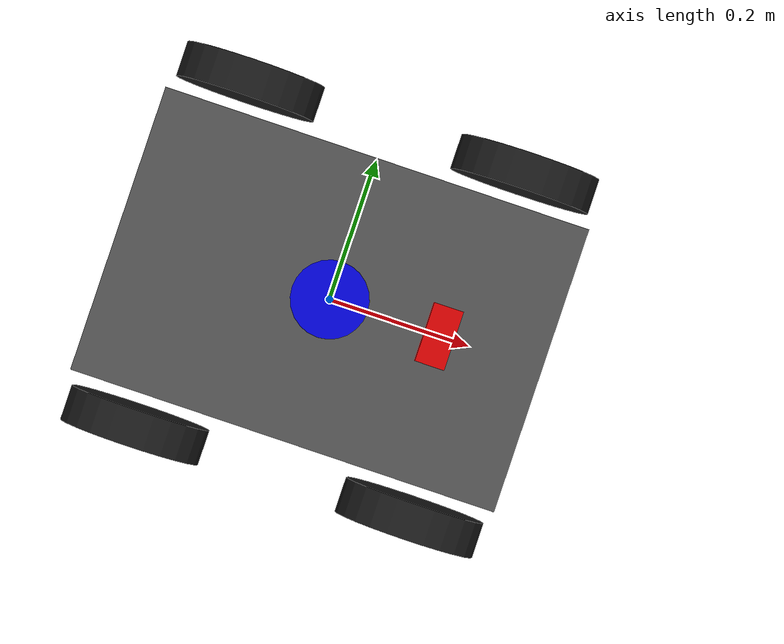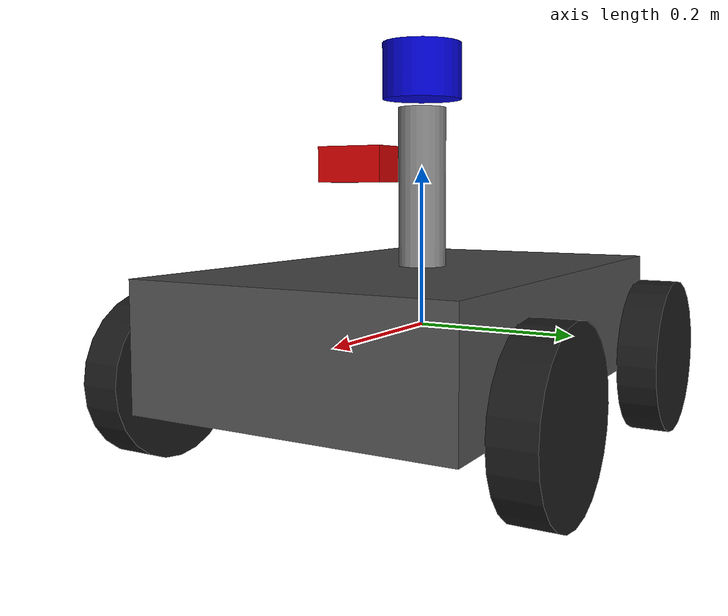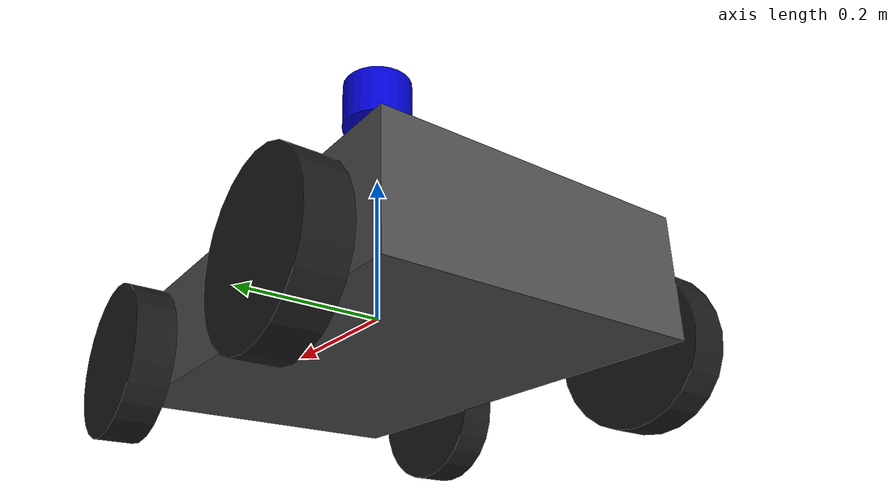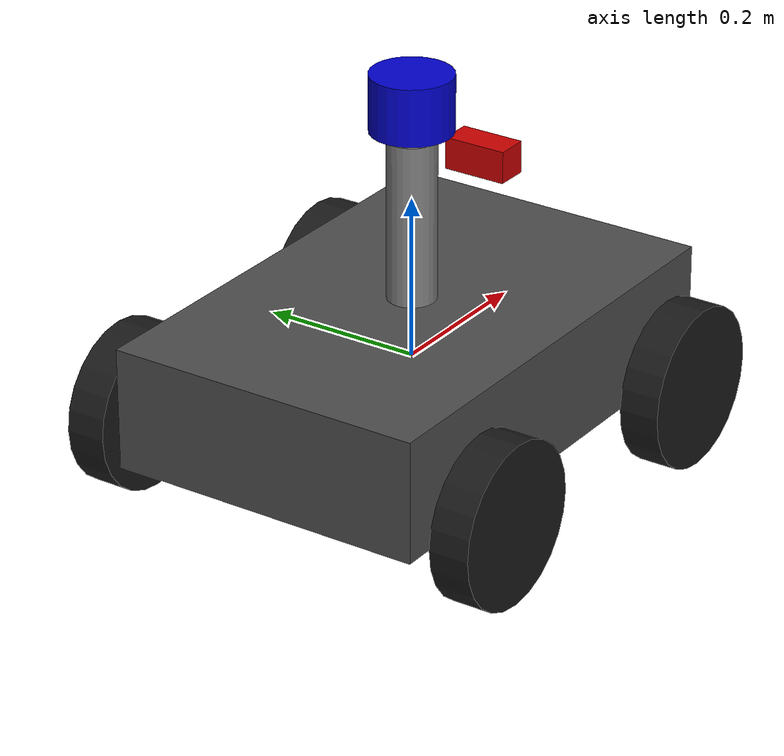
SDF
<?xml version="1.0" ?>
<sdf version="1.6">
  <model name="livo2_rover">
    <static>false</static>

    <!-- ==================== CHASSIS ==================== -->
    <link name="base_link">
      <inertial>
        <mass>10.0</mass>
        <inertia>
          <ixx>0.5</ixx><ixy>0</ixy><ixz>0</ixz>
          <iyy>1.0</iyy><iyz>0</iyz>
          <izz>0.5</izz>
        </inertia>
      </inertial>
      <collision name="chassis_collision">
        <geometry>
          <box><size>0.6 0.4 0.15</size></box>
        </geometry>
      </collision>
      <visual name="chassis_visual">
        <geometry>
          <box><size>0.6 0.4 0.15</size></box>
        </geometry>
        <material>
          <ambient>0.2 0.2 0.2 1</ambient>
          <diffuse>0.3 0.3 0.3 1</diffuse>
        </material>
      </visual>

      <!-- ==================== IMU SENSOR ==================== -->
      <sensor name="imu_sensor" type="imu">
        <always_on>true</always_on>
        <update_rate>200</update_rate>
        <imu>
          <angular_velocity>
            <x><noise type="gaussian"><mean>0.0</mean><stddev>0.003</stddev></noise></x>
            <y><noise type="gaussian"><mean>0.0</mean><stddev>0.003</stddev></noise></y>
            <z><noise type="gaussian"><mean>0.0</mean><stddev>0.003</stddev></noise></z>
          </angular_velocity>
          <linear_acceleration>
            <x><noise type="gaussian"><mean>0.0</mean><stddev>0.05</stddev></noise></x>
            <y><noise type="gaussian"><mean>0.0</mean><stddev>0.05</stddev></noise></y>
            <z><noise type="gaussian"><mean>0.0</mean><stddev>0.05</stddev></noise></z>
          </linear_acceleration>
        </imu>
        <plugin name="imu_plugin" filename="libgazebo_ros_imu_sensor.so">
          <topicName>/rover/imu</topicName>
          <bodyName>base_link</bodyName>
          <frameName>base_link</frameName>
          <updateRateHZ>200.0</updateRateHZ>
          <gaussianNoise>0.0</gaussianNoise>
          <xyzOffset>0 0 0</xyzOffset>
          <rpyOffset>0 0 0</rpyOffset>
        </plugin>
      </sensor>
    </link>

    <!-- ==================== WHEELS ==================== -->
    <!-- Front left wheel -->
    <link name="front_left_wheel">
      <pose>0.2 0.25 -0.05 -1.5708 0 0</pose>
      <inertial>
        <mass>0.5</mass>
        <inertia>
          <ixx>0.001</ixx><ixy>0</ixy><ixz>0</ixz>
          <iyy>0.001</iyy><iyz>0</iyz><izz>0.001</izz>
        </inertia>
      </inertial>
      <collision name="collision">
        <geometry><cylinder><radius>0.1</radius><length>0.05</length></cylinder></geometry>
        <surface>
          <friction><ode><mu>1.0</mu><mu2>1.0</mu2></ode></friction>
        </surface>
      </collision>
      <visual name="visual">
        <geometry><cylinder><radius>0.1</radius><length>0.05</length></cylinder></geometry>
        <material><ambient>0.1 0.1 0.1 1</ambient></material>
      </visual>
    </link>
    <joint name="front_left_wheel_joint" type="revolute">
      <parent>base_link</parent>
      <child>front_left_wheel</child>
      <axis><xyz>0 0 1</xyz></axis>
    </joint>

    <!-- Front right wheel -->
    <link name="front_right_wheel">
      <pose>0.2 -0.25 -0.05 -1.5708 0 0</pose>
      <inertial>
        <mass>0.5</mass>
        <inertia>
          <ixx>0.001</ixx><ixy>0</ixy><ixz>0</ixz>
          <iyy>0.001</iyy><iyz>0</iyz><izz>0.001</izz>
        </inertia>
      </inertial>
      <collision name="collision">
        <geometry><cylinder><radius>0.1</radius><length>0.05</length></cylinder></geometry>
        <surface>
          <friction><ode><mu>1.0</mu><mu2>1.0</mu2></ode></friction>
        </surface>
      </collision>
      <visual name="visual">
        <geometry><cylinder><radius>0.1</radius><length>0.05</length></cylinder></geometry>
        <material><ambient>0.1 0.1 0.1 1</ambient></material>
      </visual>
    </link>
    <joint name="front_right_wheel_joint" type="revolute">
      <parent>base_link</parent>
      <child>front_right_wheel</child>
      <axis><xyz>0 0 1</xyz></axis>
    </joint>

    <!-- Rear left wheel -->
    <link name="rear_left_wheel">
      <pose>-0.2 0.25 -0.05 -1.5708 0 0</pose>
      <inertial>
        <mass>0.5</mass>
        <inertia>
          <ixx>0.001</ixx><ixy>0</ixy><ixz>0</ixz>
          <iyy>0.001</iyy><iyz>0</iyz><izz>0.001</izz>
        </inertia>
      </inertial>
      <collision name="collision">
        <geometry><cylinder><radius>0.1</radius><length>0.05</length></cylinder></geometry>
        <surface>
          <friction><ode><mu>1.0</mu><mu2>1.0</mu2></ode></friction>
        </surface>
      </collision>
      <visual name="visual">
        <geometry><cylinder><radius>0.1</radius><length>0.05</length></cylinder></geometry>
        <material><ambient>0.1 0.1 0.1 1</ambient></material>
      </visual>
    </link>
    <joint name="rear_left_wheel_joint" type="revolute">
      <parent>base_link</parent>
      <child>rear_left_wheel</child>
      <axis><xyz>0 0 1</xyz></axis>
    </joint>

    <!-- Rear right wheel -->
    <link name="rear_right_wheel">
      <pose>-0.2 -0.25 -0.05 -1.5708 0 0</pose>
      <inertial>
        <mass>0.5</mass>
        <inertia>
          <ixx>0.001</ixx><ixy>0</ixy><ixz>0</ixz>
          <iyy>0.001</iyy><iyz>0</iyz><izz>0.001</izz>
        </inertia>
      </inertial>
      <collision name="collision">
        <geometry><cylinder><radius>0.1</radius><length>0.05</length></cylinder></geometry>
        <surface>
          <friction><ode><mu>1.0</mu><mu2>1.0</mu2></ode></friction>
        </surface>
      </collision>
      <visual name="visual">
        <geometry><cylinder><radius>0.1</radius><length>0.05</length></cylinder></geometry>
        <material><ambient>0.1 0.1 0.1 1</ambient></material>
      </visual>
    </link>
    <joint name="rear_right_wheel_joint" type="revolute">
      <parent>base_link</parent>
      <child>rear_right_wheel</child>
      <axis><xyz>0 0 1</xyz></axis>
    </joint>

    <!-- Differential drive plugin (ROS1 Noetic syntax) -->
    <plugin name="diff_drive" filename="libgazebo_ros_diff_drive.so">
      <updateRate>100</updateRate>
      <leftJoint>front_left_wheel_joint</leftJoint>
      <rightJoint>front_right_wheel_joint</rightJoint>
      <wheelSeparation>0.5</wheelSeparation>
      <wheelDiameter>0.2</wheelDiameter>
      <wheelTorque>20</wheelTorque>
      <wheelAcceleration>1.0</wheelAcceleration>
      <commandTopic>/rover/cmd_vel</commandTopic>
      <odometryTopic>/rover/odom</odometryTopic>
      <odometryFrame>odom</odometryFrame>
      <robotBaseFrame>base_link</robotBaseFrame>
      <publishOdom>true</publishOdom>
      <publishOdomTF>true</publishOdomTF>
      <publishWheelTF>false</publishWheelTF>
      <publishWheelJointState>false</publishWheelJointState>
      <legacyMode>false</legacyMode>
    </plugin>

    <!-- Second diff drive for rear wheels (slaved to front) -->
    <plugin name="rear_diff_drive" filename="libgazebo_ros_diff_drive.so">
      <updateRate>100</updateRate>
      <leftJoint>rear_left_wheel_joint</leftJoint>
      <rightJoint>rear_right_wheel_joint</rightJoint>
      <wheelSeparation>0.5</wheelSeparation>
      <wheelDiameter>0.2</wheelDiameter>
      <wheelTorque>20</wheelTorque>
      <wheelAcceleration>1.0</wheelAcceleration>
      <commandTopic>/rover/cmd_vel</commandTopic>
      <odometryTopic>/rover/rear_odom</odometryTopic>
      <odometryFrame>odom</odometryFrame>
      <robotBaseFrame>base_link</robotBaseFrame>
      <publishOdom>false</publishOdom>
      <publishOdomTF>false</publishOdomTF>
      <publishWheelTF>false</publishWheelTF>
      <legacyMode>false</legacyMode>
    </plugin>

    <!-- ==================== SENSOR MAST ==================== -->
    <link name="sensor_mast">
      <pose>0 0 0.175 0 0 0</pose>
      <inertial>
        <mass>0.3</mass>
        <inertia>
          <ixx>0.001</ixx><ixy>0</ixy><ixz>0</ixz>
          <iyy>0.001</iyy><iyz>0</iyz><izz>0.001</izz>
        </inertia>
      </inertial>
      <collision name="mast_collision">
        <geometry><cylinder><radius>0.03</radius><length>0.2</length></cylinder></geometry>
      </collision>
      <visual name="mast_visual">
        <geometry><cylinder><radius>0.03</radius><length>0.2</length></cylinder></geometry>
        <material><ambient>0.5 0.5 0.5 1</ambient></material>
      </visual>
    </link>
    <joint name="mast_joint" type="fixed">
      <parent>base_link</parent>
      <child>sensor_mast</child>
    </joint>

    <!-- ==================== VLP-16 LIDAR ==================== -->
    <link name="velodyne_link">
      <pose>0 0 0.32 0 0 0</pose>
      <inertial>
        <mass>0.83</mass>
        <inertia>
          <ixx>0.001</ixx><ixy>0</ixy><ixz>0</ixz>
          <iyy>0.001</iyy><iyz>0</iyz><izz>0.001</izz>
        </inertia>
      </inertial>
      <collision name="lidar_collision">
        <geometry><cylinder><radius>0.05</radius><length>0.07</length></cylinder></geometry>
      </collision>
      <visual name="lidar_visual">
        <geometry><cylinder><radius>0.05</radius><length>0.07</length></cylinder></geometry>
        <material>
          <ambient>0.0 0.0 0.8 1</ambient>
          <diffuse>0.0 0.0 0.8 1</diffuse>
        </material>
      </visual>

      <sensor name="velodyne" type="ray">
        <always_on>true</always_on>
        <visualize>false</visualize>
        <update_rate>10</update_rate>
        <ray>
          <scan>
            <horizontal>
              <samples>900</samples>
              <resolution>1</resolution>
              <min_angle>-3.14159</min_angle>
              <max_angle>3.14159</max_angle>
            </horizontal>
            <vertical>
              <samples>16</samples>
              <resolution>1</resolution>
              <min_angle>-0.261799</min_angle>
              <max_angle>0.261799</max_angle>
            </vertical>
          </scan>
          <range>
            <min>0.5</min>
            <max>100.0</max>
            <resolution>0.003</resolution>
          </range>
          <noise>
            <type>gaussian</type>
            <mean>0.0</mean>
            <stddev>0.005</stddev>
          </noise>
        </ray>
        <plugin name="velodyne_plugin" filename="libgazebo_ros_velodyne_laser.so">
          <topicName>/rover/velodyne_points</topicName>
          <frameName>velodyne_link</frameName>
          <min_range>0.5</min_range>
          <max_range>100.0</max_range>
          <gaussianNoise>0.005</gaussianNoise>
          <organize_cloud>false</organize_cloud>
        </plugin>
      </sensor>
    </link>
    <joint name="velodyne_joint" type="fixed">
      <parent>sensor_mast</parent>
      <child>velodyne_link</child>
    </joint>

    <!-- ==================== CAMERA ==================== -->
    <link name="camera_link">
      <pose>0.15 0 0.2 0 0 0</pose>
      <inertial>
        <mass>0.1</mass>
        <inertia>
          <ixx>0.0001</ixx><ixy>0</ixy><ixz>0</ixz>
          <iyy>0.0001</iyy><iyz>0</iyz><izz>0.0001</izz>
        </inertia>
      </inertial>
      <collision name="camera_collision">
        <geometry><box><size>0.04 0.08 0.04</size></box></geometry>
      </collision>
      <visual name="camera_visual">
        <geometry><box><size>0.04 0.08 0.04</size></box></geometry>
        <material>
          <ambient>0.8 0.0 0.0 1</ambient>
          <diffuse>0.8 0.0 0.0 1</diffuse>
        </material>
      </visual>

      <sensor name="camera" type="camera">
        <always_on>true</always_on>
        <visualize>false</visualize>
        <update_rate>20</update_rate>
        <camera>
          <horizontal_fov>1.3962634</horizontal_fov>
          <image>
            <width>640</width>
            <height>480</height>
            <format>R8G8B8</format>
          </image>
          <clip>
            <near>0.02</near>
            <far>300</far>
          </clip>
          <noise>
            <type>gaussian</type>
            <mean>0.0</mean>
            <stddev>0.007</stddev>
          </noise>
        </camera>
        <plugin name="camera_plugin" filename="libgazebo_ros_camera.so">
          <cameraName>rover_camera</cameraName>
          <imageTopicName>/rover/camera/image_raw</imageTopicName>
          <cameraInfoTopicName>/rover/camera/camera_info</cameraInfoTopicName>
          <frameName>camera_link</frameName>
          <alwaysOn>true</alwaysOn>
          <updateRate>20.0</updateRate>
          <hackBaseline>0.0</hackBaseline>
          <distortionK1>0.0</distortionK1>
          <distortionK2>0.0</distortionK2>
          <distortionK3>0.0</distortionK3>
          <distortionT1>0.0</distortionT1>
          <distortionT2>0.0</distortionT2>
        </plugin>
      </sensor>
    </link>
    <joint name="camera_joint" type="fixed">
      <parent>base_link</parent>
      <child>camera_link</child>
    </joint>

  </model>
</sdf>
